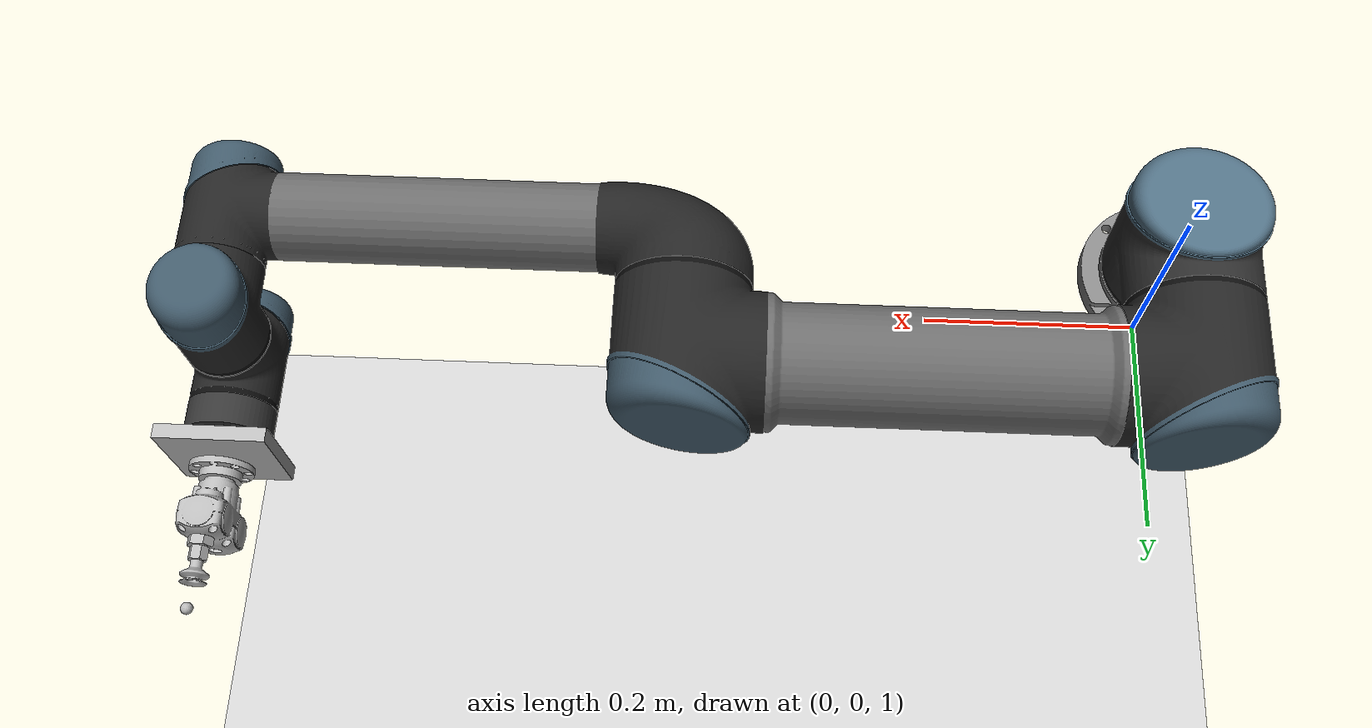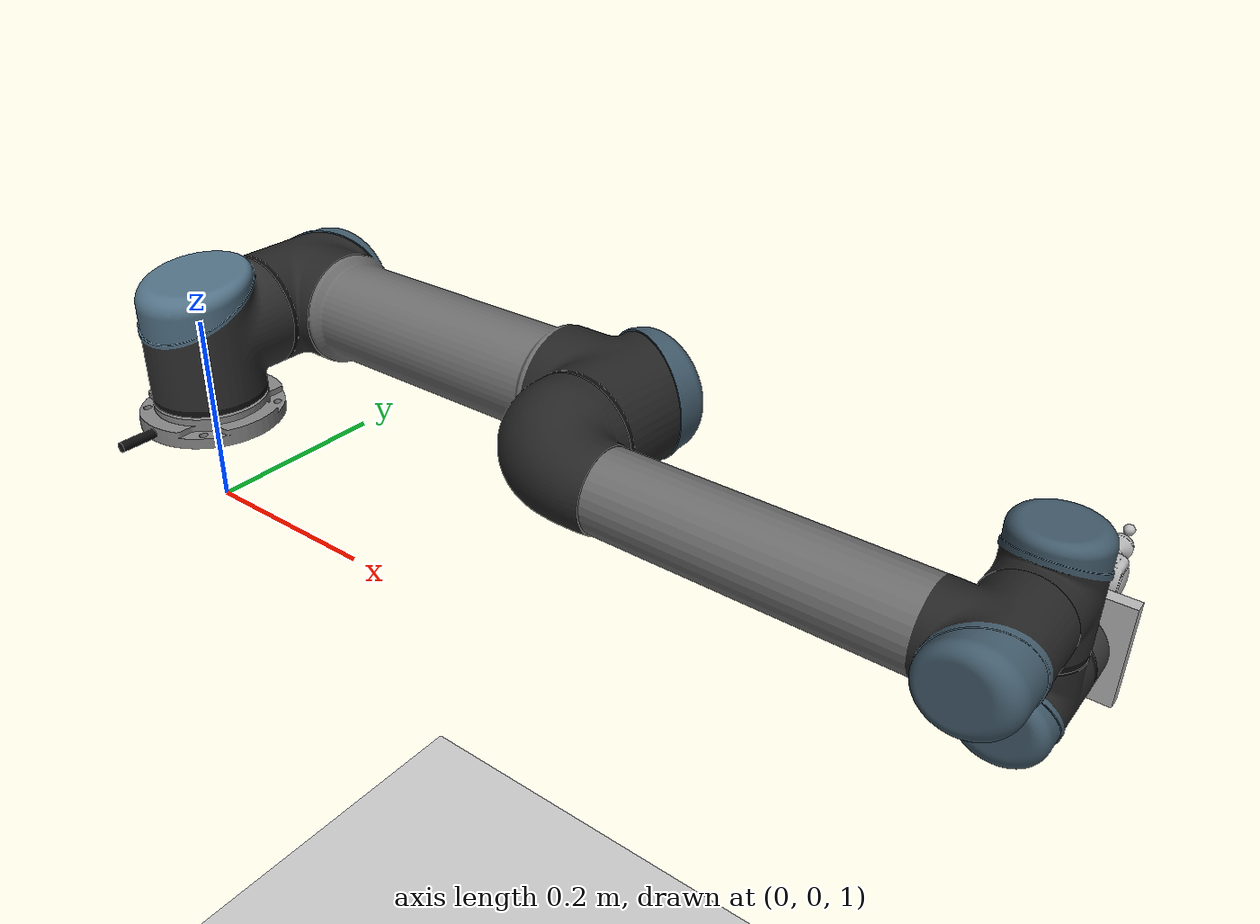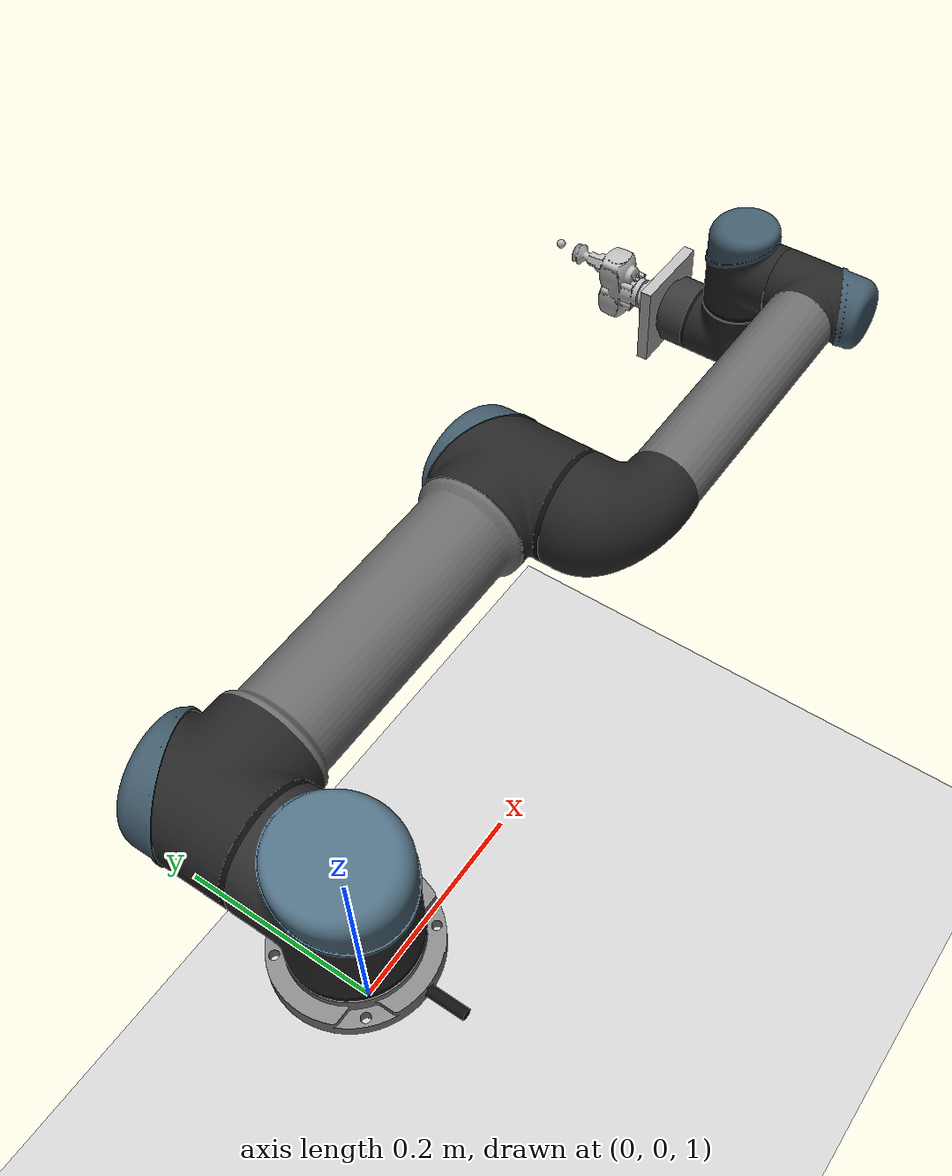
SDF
<sdf version="1.6">
 <world name="default">
  <light name="sun" type="directional">
   <pose>0 0 10 0 -0 0</pose>
   <diffuse>0.8 0.8 0.8 1</diffuse>
   <specular>0.2 0.2 0.2 1</specular>
   <attenuation>
    <range>1000</range>
    <constant>0.9</constant>
    <linear>0.01</linear>
    <quadratic>0.001</quadratic>
   </attenuation>
   <direction>-0.5 0.1 -0.9</direction>
  </light>
  <model name="ground_plane">
   <static>1</static>
   <link name="link">
    <collision name="collision">
     <geometry><plane><normal>0 0 1</normal><size>100 100</size></plane></geometry>
     <surface><friction><ode><mu>100</mu><mu2>50</mu2></ode></friction></surface>
    </collision>
    <visual name="visual">
     <cast_shadows>0</cast_shadows>
     <geometry><plane><normal>0 0 1</normal><size>100 100</size></plane></geometry>
     <material>
      <script><uri>file://media/materials/scripts/gazebo.material</uri><name>Gazebo/Grey</name></script>
     </material>
    </visual>
   </link>
  </model>
  <gravity>0 0 -9.8</gravity>
  <magnetic_field>6e-06 2.3e-05 -4.2e-05</magnetic_field>
  <atmosphere type="adiabatic"/>
  <physics name="default_physics" default="0" type="ode">
   <max_step_size>0.001</max_step_size>
   <real_time_factor>1</real_time_factor>
   <real_time_update_rate>1000</real_time_update_rate>
  </physics>
  <scene><ambient>0.4 0.4 0.4 1</ambient><background>0.7 0.7 0.7 1</background><shadows>1</shadows></scene>
  <spherical_coordinates>
   <surface_model>EARTH_WGS84</surface_model>
   <latitude_deg>0</latitude_deg>
   <longitude_deg>0</longitude_deg>
   <elevation>0</elevation>
   <heading_deg>0</heading_deg>
  </spherical_coordinates>
  <model name="robot">
   <link name="base_link">
    <pose>0 0 1 0 -0 0</pose>
    <inertial>
     <mass>4</mass>
     <inertia>
      <ixx>0.00443333</ixx>
      <ixy>0</ixy>
      <ixz>0</ixz>
      <iyy>0.00443333</iyy>
      <iyz>0</iyz>
      <izz>0.0072</izz>
     </inertia>
    </inertial>
    <collision name="base_link_collision">
     <geometry>
      <mesh>
       <scale>1 1 1</scale>
       <uri>/home/biba/catkin_ws/src/universal_robot/ur_description/meshes/ur5/collision/base.stl</uri>
      </mesh>
     </geometry>
    </collision>
    <visual name="base_link_visual">
     <geometry>
      <mesh>
       <scale>1 1 1</scale>
       <uri>/home/biba/catkin_ws/src/universal_robot/ur_description/meshes/ur5/visual/base.dae</uri>
      </mesh>
     </geometry>
    </visual>
   </link>
   <joint name="world_joint" type="revolute">
    <child>base_link</child>
    <parent>world</parent>
    <axis>
     <limit><lower>0</lower><upper>0</upper></limit>
     <dynamics>
      <damping>0</damping>
      <friction>0</friction>
      <spring_reference>0</spring_reference>
      <spring_stiffness>0</spring_stiffness>
     </dynamics>
     <use_parent_model_frame>1</use_parent_model_frame>
     <xyz>0 0 1</xyz>
    </axis>
   </joint>
   <link name="shoulder_link">
    <pose>0 0 1.08916 0 -0 0</pose>
    <inertial>
     <mass>3.7</mass>
     <inertia>
      <ixx>0.0102675</ixx>
      <ixy>0</ixy>
      <ixz>0</ixz>
      <iyy>0.0102675</iyy>
      <iyz>0</iyz>
      <izz>0.00666</izz>
     </inertia>
    </inertial>
    <collision name="shoulder_link_collision">
     <geometry>
      <mesh>
       <scale>1 1 1</scale>
       <uri>/home/biba/catkin_ws/src/universal_robot/ur_description/meshes/ur5/collision/shoulder.stl</uri>
      </mesh>
     </geometry>
    </collision>
    <visual name="shoulder_link_visual">
     <geometry>
      <mesh>
       <scale>1 1 1</scale>
       <uri>/home/biba/catkin_ws/src/universal_robot/ur_description/meshes/ur5/visual/shoulder.dae</uri>
      </mesh>
     </geometry>
    </visual>
   </link>
   <joint name="shoulder_pan_joint" type="revolute">
    <child>shoulder_link</child>
    <parent>base_link</parent>
    <axis>
     <xyz>0 0 1</xyz>
     <limit><lower>-6.28319</lower><upper>6.28319</upper><effort>150</effort><velocity>3.15</velocity></limit>
     <dynamics>
      <damping>0</damping>
      <friction>0</friction>
      <spring_reference>0</spring_reference>
      <spring_stiffness>0</spring_stiffness>
     </dynamics>
     <use_parent_model_frame>1</use_parent_model_frame>
    </axis>
   </joint>
   <link name="upper_arm_link">
    <pose>0 0.13585 1.08916 3.14159 1.57079 3.14159</pose>
    <inertial>
     <pose>0 0 0.28 0 -0 0</pose>
     <mass>8.393</mass>
     <inertia>
      <ixx>0.226891</ixx>
      <ixy>0</ixy>
      <ixz>0</ixz>
      <iyy>0.226891</iyy>
      <iyz>0</iyz>
      <izz>0.0151074</izz>
     </inertia>
    </inertial>
    <collision name="upper_arm_link_collision">
     <geometry>
      <mesh>
       <scale>1 1 1</scale>
       <uri>/home/biba/catkin_ws/src/universal_robot/ur_description/meshes/ur5/collision/upperarm.stl</uri>
      </mesh>
     </geometry>
    </collision>
    <visual name="upper_arm_link_visual">
     <geometry>
      <mesh>
       <scale>1 1 1</scale>
       <uri>/home/biba/catkin_ws/src/universal_robot/ur_description/meshes/ur5/visual/upperarm.dae</uri>
      </mesh>
     </geometry>
    </visual>
   </link>
   <joint name="shoulder_lift_joint" type="revolute">
    <child>upper_arm_link</child>
    <parent>shoulder_link</parent>
    <axis>
     <xyz>0 1 0</xyz>
     <limit><lower>-6.28319</lower><upper>6.28319</upper><effort>150</effort><velocity>3.15</velocity></limit>
     <dynamics>
      <damping>0</damping>
      <friction>0</friction>
      <spring_reference>0</spring_reference>
      <spring_stiffness>0</spring_stiffness>
     </dynamics>
     <use_parent_model_frame>1</use_parent_model_frame>
    </axis>
   </joint>
   <link name="forearm_link">
    <pose>0.425 0.01615 1.08916 3.14159 1.57079 3.14159</pose>
    <inertial>
     <pose>0 0 0.25 0 -0 0</pose>
     <mass>2.275</mass>
     <inertia>
      <ixx>0.0494433</ixx>
      <ixy>0</ixy>
      <ixz>0</ixz>
      <iyy>0.0494433</iyy>
      <iyz>0</iyz>
      <izz>0.004095</izz>
     </inertia>
    </inertial>
    <collision name="forearm_link_collision">
     <geometry>
      <mesh>
       <scale>1 1 1</scale>
       <uri>/home/biba/catkin_ws/src/universal_robot/ur_description/meshes/ur5/collision/forearm.stl</uri>
      </mesh>
     </geometry>
    </collision>
    <visual name="forearm_link_visual">
     <geometry>
      <mesh>
       <scale>1 1 1</scale>
       <uri>/home/biba/catkin_ws/src/universal_robot/ur_description/meshes/ur5/visual/forearm.dae</uri>
      </mesh>
     </geometry>
    </visual>
   </link>
   <joint name="elbow_joint" type="revolute">
    <child>forearm_link</child>
    <parent>upper_arm_link</parent>
    <axis>
     <xyz>0 1 0</xyz>
     <limit><lower>-6.28319</lower><upper>6.28319</upper><effort>150</effort><velocity>3.15</velocity></limit>
     <dynamics>
      <damping>0</damping>
      <friction>0</friction>
      <spring_reference>0</spring_reference>
      <spring_stiffness>0</spring_stiffness>
     </dynamics>
     <use_parent_model_frame>1</use_parent_model_frame>
    </axis>
   </joint>
   <link name="wrist_1_link">
    <pose>0.81725 0.01615 1.08916 3.14159 -0 3.14159</pose>
    <inertial>
     <mass>1.219</mass>
     <inertia>
      <ixx>0.111173</ixx>
      <ixy>0</ixy>
      <ixz>0</ixz>
      <iyy>0.111173</iyy>
      <iyz>0</iyz>
      <izz>0.21942</izz>
     </inertia>
    </inertial>
    <collision name="wrist_1_link_collision">
     <geometry>
      <mesh>
       <scale>1 1 1</scale>
       <uri>/home/biba/catkin_ws/src/universal_robot/ur_description/meshes/ur5/collision/wrist1.stl</uri>
      </mesh>
     </geometry>
    </collision>
    <visual name="wrist_1_link_visual">
     <geometry>
      <mesh>
       <scale>1 1 1</scale>
       <uri>/home/biba/catkin_ws/src/universal_robot/ur_description/meshes/ur5/visual/wrist1.dae</uri>
      </mesh>
     </geometry>
    </visual>
   </link>
   <joint name="wrist_1_joint" type="revolute">
    <child>wrist_1_link</child>
    <parent>forearm_link</parent>
    <axis>
     <xyz>0 1 0</xyz>
     <limit><lower>-6.28319</lower><upper>6.28319</upper><effort>28</effort><velocity>3.2</velocity></limit>
     <dynamics>
      <damping>0</damping>
      <friction>0</friction>
      <spring_reference>0</spring_reference>
      <spring_stiffness>0</spring_stiffness>
     </dynamics>
     <use_parent_model_frame>1</use_parent_model_frame>
    </axis>
   </joint>
   <link name="wrist_2_link">
    <pose>0.81725 0.10915 1.08916 3.14159 -0 3.14159</pose>
    <inertial>
     <mass>1.219</mass>
     <inertia>
      <ixx>0.111173</ixx>
      <ixy>0</ixy>
      <ixz>0</ixz>
      <iyy>0.111173</iyy>
      <iyz>0</iyz>
      <izz>0.21942</izz>
     </inertia>
    </inertial>
    <collision name="wrist_2_link_collision">
     <geometry>
      <mesh>
       <scale>1 1 1</scale>
       <uri>/home/biba/catkin_ws/src/universal_robot/ur_description/meshes/ur5/collision/wrist2.stl</uri>
      </mesh>
     </geometry>
    </collision>
    <visual name="wrist_2_link_visual">
     <geometry>
      <mesh>
       <scale>1 1 1</scale>
       <uri>/home/biba/catkin_ws/src/universal_robot/ur_description/meshes/ur5/visual/wrist2.dae</uri>
      </mesh>
     </geometry>
    </visual>
   </link>
   <joint name="wrist_2_joint" type="revolute">
    <child>wrist_2_link</child>
    <parent>wrist_1_link</parent>
    <axis>
     <xyz>0 0 -1</xyz>
     <limit><lower>-6.28319</lower><upper>6.28319</upper><effort>28</effort><velocity>3.2</velocity></limit>
     <dynamics>
      <damping>0</damping>
      <friction>0</friction>
      <spring_reference>0</spring_reference>
      <spring_stiffness>0</spring_stiffness>
     </dynamics>
     <use_parent_model_frame>1</use_parent_model_frame>
    </axis>
   </joint>
   <link name="wrist_3_link">
    <pose>0.81725 0.10915 0.994509 3.14159 -0 3.14159</pose>
    <inertial>
     <mass>0.1879</mass>
     <inertia>
      <ixx>0.0171365</ixx>
      <ixy>0</ixy>
      <ixz>0</ixz>
      <iyy>0.0171365</iyy>
      <iyz>0</iyz>
      <izz>0.033822</izz>
     </inertia>
    </inertial>
    <collision name="wrist_3_link_collision">
     <geometry>
      <mesh>
       <scale>1 1 1</scale>
       <uri>/home/biba/catkin_ws/src/universal_robot/ur_description/meshes/ur5/collision/wrist3.stl</uri>
      </mesh>
     </geometry>
    </collision>
    <collision name="wrist_3_link_fixed_joint_lump__ee_link_collision_1">
     <pose>-0 0.0723 0 0 -0 1.5708</pose>
     <geometry><box><size>0.01 0.01 0.01</size></box></geometry>
    </collision>
    <collision name="wrist_3_link_fixed_joint_lump__gripper_body_collision_2">
     <pose>-3.8e-05 0.1496 3.8e-05 -1.57 -0 0.000796</pose>
     <geometry><box><size>0.044 0.088 0.16</size></box></geometry>
    </collision>
    <collision name="wrist_3_link_fixed_joint_lump__tcp_frame_collision_3">
     <pose>-0.000104 0.232317 -0.021897 -1.57 -0 0.000796</pose>
     <geometry><sphere><radius>0.005</radius></sphere></geometry>
    </collision>
    <collision name="wrist_3_link_fixed_joint_lump__tool_interface_plate_collision_4">
     <pose>0 0.08865 0 0 1.57 1.5708</pose>
     <geometry><box><size>0.09525 0.09525 0.0127</size></box></geometry>
    </collision>
    <visual name="wrist_3_link_visual">
     <geometry>
      <mesh>
       <scale>1 1 1</scale>
       <uri>/home/biba/catkin_ws/src/universal_robot/ur_description/meshes/ur5/visual/wrist3.dae</uri>
      </mesh>
     </geometry>
    </visual>
    <visual name="wrist_3_link_fixed_joint_lump__gripper_body_visual_1">
     <pose>1e-06 0.1016 -1e-06 -1.57 -0 0.000796</pose>
     <geometry>
      <mesh>
       <scale>1 1 1</scale>
       <uri>/home/biba/catkin_ws/src/Perception-Driven_Manipulation/solution_ws/src/robot_config/meshes/vacuum_gripper_single_suction_cup.STL</uri>
      </mesh>
     </geometry>
    </visual>
    <visual name="wrist_3_link_fixed_joint_lump__tcp_frame_visual_2">
     <pose>-0.000104 0.232317 -0.021897 -1.57 -0 0.000796</pose>
     <geometry><sphere><radius>0.005</radius></sphere></geometry>
    </visual>
    <visual name="wrist_3_link_fixed_joint_lump__tool_interface_plate_visual_3">
     <pose>0 0.08865 0 0 1.57 1.5708</pose>
     <geometry><box><size>0.09525 0.09525 0.0127</size></box></geometry>
    </visual>
   </link>
   <joint name="wrist_3_joint" type="revolute">
    <child>wrist_3_link</child>
    <parent>wrist_2_link</parent>
    <axis>
     <xyz>0 1 0</xyz>
     <limit><lower>-6.28319</lower><upper>6.28319</upper><effort>28</effort><velocity>3.2</velocity></limit>
     <dynamics>
      <damping>0</damping>
      <friction>0</friction>
      <spring_reference>0</spring_reference>
      <spring_stiffness>0</spring_stiffness>
     </dynamics>
     <use_parent_model_frame>1</use_parent_model_frame>
    </axis>
   </joint>
   <static>0</static>
   <plugin name="ros_control" filename="libgazebo_ros_control.so"><robotNamespace>/</robotNamespace></plugin>
   <pose>3.9e-05 1.4e-05 0.1 1.4e-05 -3.9e-05 -4e-06</pose>
  </model>
 </world>
</sdf>
